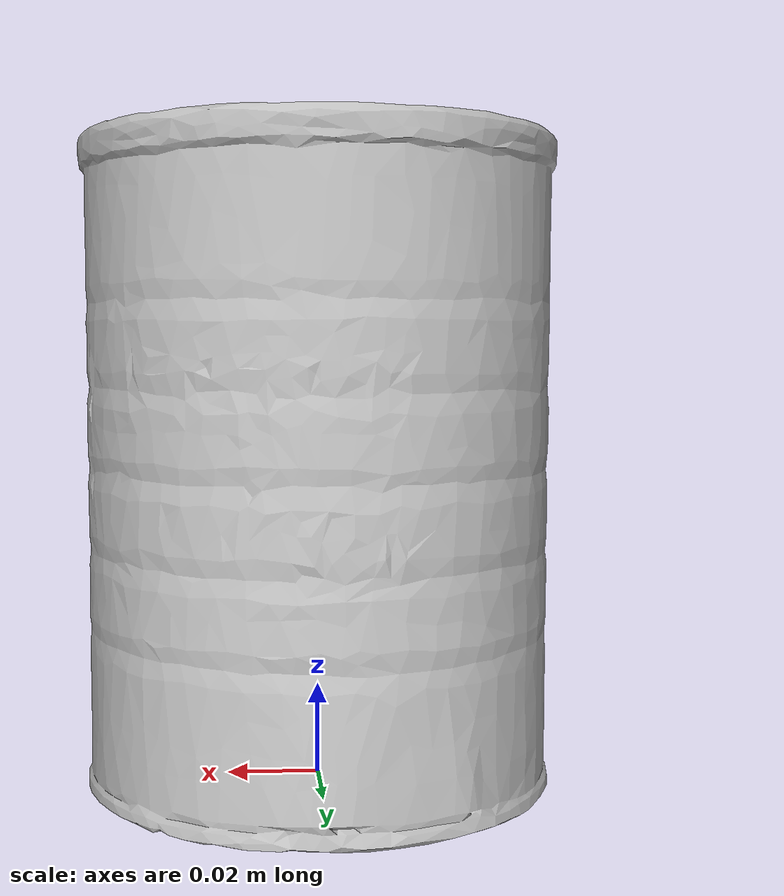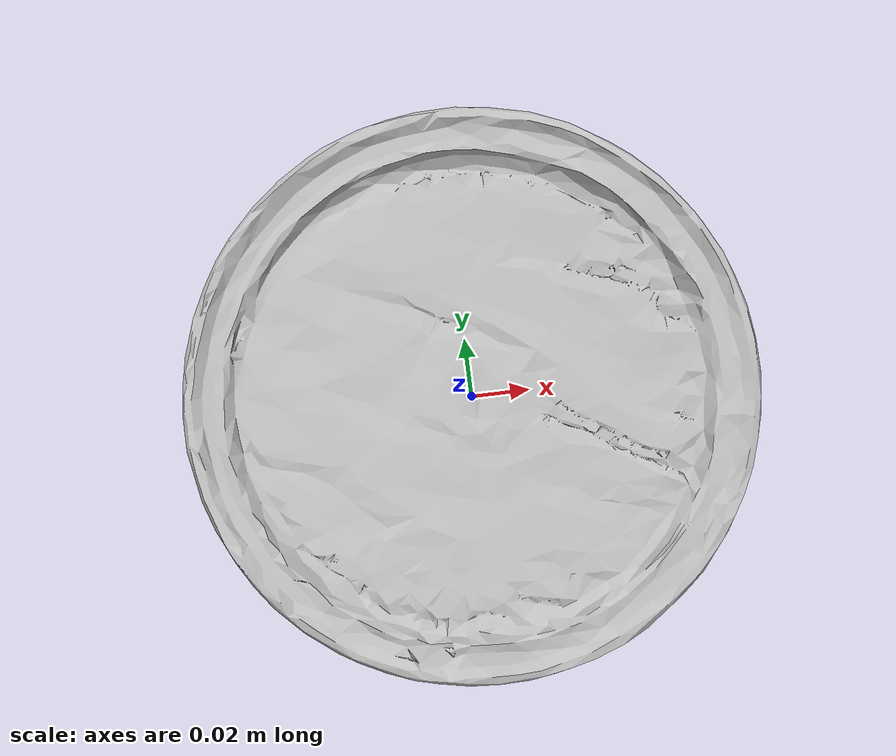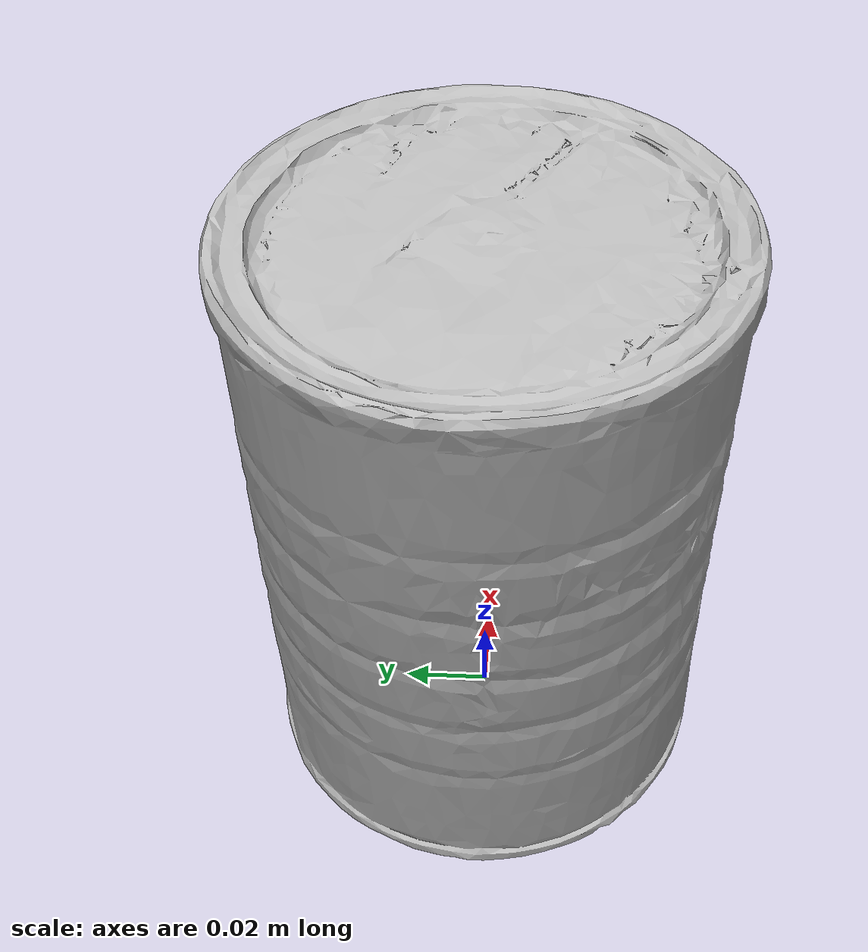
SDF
<?xml version="1.0"?>
<sdf version="1.6">
  <model name="master_chef_can">
    <link name="link">
      <inertial>
        <mass>0.414</mass>
        <inertia>
          <ixx>0.000935778</ixx>
          <ixy>0.0</ixy>
          <ixz>0.0</ixz>
          <iyy>0.000935778</iyy> <!-- same as ixx -->
          <iyz>0.0</iyz>
          <izz>0.000538407</izz>
        </inertia>
        <pose>0 0 0.0695 0 0 0</pose>
      </inertial>
      <collision name="collision">
        <pose>0 0 0.0695 0 0 0</pose>
        <geometry>
          <cylinder>
            <radius>0.051</radius>
            <length>0.139</length>
          </cylinder>
        </geometry>
      </collision>
      <visual name="visual">
        <!-- 用网格包围盒中心对齐简化圆柱 collision 中心。 -->
        <pose>0.000181760 -0.000011235 -0.000672300 0 0 0</pose>
        <geometry>
          <mesh>
            <uri>model://master_chef_can/meshes/textured.dae</uri>
          </mesh>
        </geometry>
      </visual>
    </link>
  </model>
</sdf>
